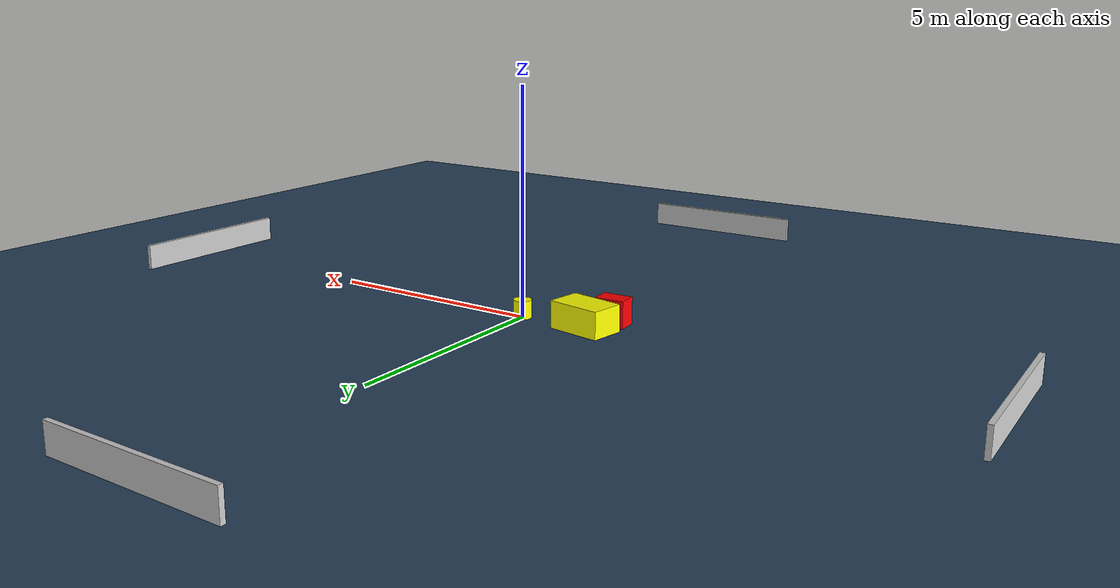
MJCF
<?xml version="1.0" ?>
<mujoco model="generated_environment">
  <option timestep="0.01" integrator="RK4" cone="elliptic"/>
  <default>
    <geom density="1"/>
  </default>
  <asset>
    <texture builtin="gradient" height="3072" name="skybox" rgb1="0.3 0.5 0.7" rgb2="0 0 0" type="skybox" width="512"/>
    <texture builtin="checker" height="300" name="groundplane" rgb1="0.2 0.3 0.4" rgb2="0.1 0.2 0.3" type="2d" width="300"/>
    <material name="groundplane" reflectance="0.2" texrepeat="5 5" texture="groundplane"/>
  </asset>
  <worldbody>
    <light dir="0 0 -1" directional="true" pos="0 0 1.5"/>
    <geom condim="3" friction="0.5 0.005 0.001" material="groundplane" name="floor" pos="0 0 0" size="0 0 0.05" type="plane"/>
    <body name="walls">
      <geom name="wall_1" condim="4" pos="-10.0 0.0 0.3" rgba="0.800000011920929 0.800000011920929 0.800000011920929 1.0" size="0.05 2.0 0.3" type="box"/>
      <geom name="wall_2" condim="4" pos="10.0 0.0 0.3" rgba="0.800000011920929 0.800000011920929 0.800000011920929 1.0" size="0.05 2.0 0.3" type="box"/>
      <geom name="wall_3" condim="4" pos="0.0 -10.0 0.3" rgba="0.800000011920929 0.800000011920929 0.800000011920929 1.0" size="2.0 0.05 0.3" type="box"/>
      <geom name="wall_4" condim="4" pos="0.0 10.0 0.3" rgba="0.800000011920929 0.800000011920929 0.800000011920929 1.0" size="2.0 0.05 0.3" type="box"/>
    </body>
    <body name="robot">
      <joint name="joint_x" type="slide" pos="0 0 0" axis="1 0 0"/>
      <joint name="joint_y" type="slide" pos="0 0 0" axis="0 1 0"/>
      <geom name="robot" type="cylinder" pos="0.0 0.0 0.2" size="0.2 0.2 0.0" mass="5.0" friction="1.0 0.005 0.0001" condim="4" rgba="1.0 1.0 0.0 1.0"/>
    </body>
    <body name="obstacle_1_movable">
      <geom name="obstacle_1_movable" condim="4" pos="-1.5736070128871695 -0.004212112751316543 0.3" euler="0 0 80.71925759341515" friction="0.0 0.005 0.001" rgba="1.0 1.0 0.0 1.0" size="0.391585264507081 0.609290920417138 0.3" type="box" mass="0.1"/>
      <joint type="free"/>
    </body>
    <body name="obstacle_2_static">
      <geom name="obstacle_2_static" condim="4" pos="-1.868146910461991 -0.6739425726763326 0.3" euler="0 0 93.0211892458124" friction="0.0 0.005 0.001" rgba="1.0 0.0 0.0 1.0" size="0.22145188077203656 0.3262067051950572 0.3" type="box"/>
    </body>
  </worldbody>
  <actuator>
    <motor name="actuator_x" joint="joint_x" gear="1" ctrlrange="-1 1"/>
    <motor name="actuator_y" joint="joint_y" gear="1" ctrlrange="-1 1"/>
  </actuator>
</mujoco>
